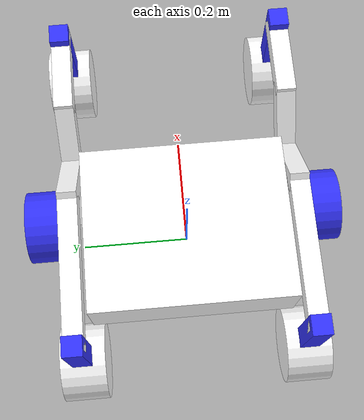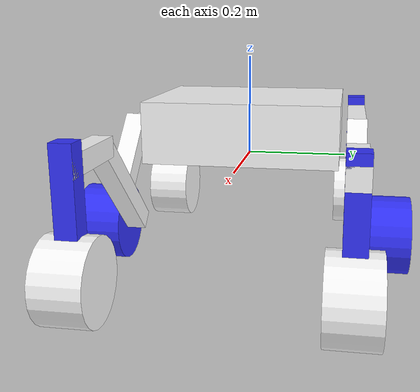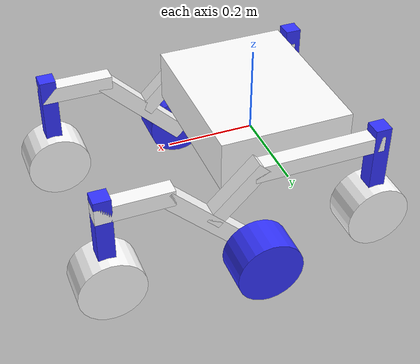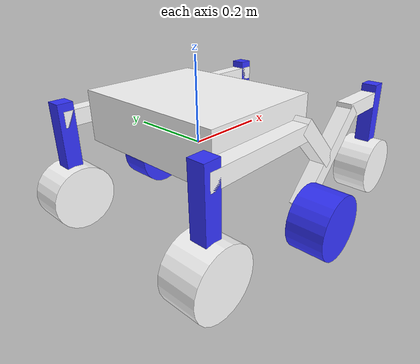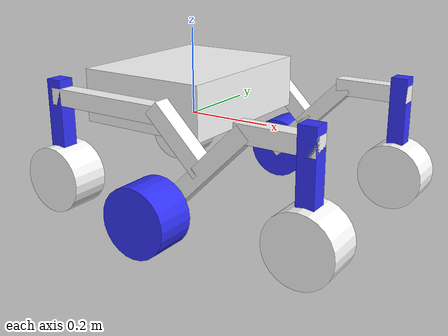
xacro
<?xml version="1.0"?>
<robot xmlns:xacro="http://www.ros.org/wiki/xacro"  name="robot">

    <!--FILES -->

    <xacro:include filename="inertial_macros.xacro"/>

    <!--COLORS -->

    <material name="gray">
        <color rgba="0 0 0 0.17"/>
    </material>

    <material name="black">
        <color rgba="0 0 0 0.1"/>
    </material>

    <material name="blue">
        <color rgba="0.2 0.2 1 1"/>
    </material>

    <material name="white">
        <color rgba="1 1 1 1"/>
    </material>

    <!--BASE LINK -->

    <link name="base_link">

    </link>

    <!--CHASSIS LINK -->

    <joint name="chassis_joint" type="fixed">
        <parent link="base_link"/>
        <child link="chassis"/>
        <origin xyz="0 0 0.060325"/>
    </joint>

    <link name="chassis">
        <visual>
            <geometry>
                <box size="0.3048 0.381 0.12065"/>
            </geometry>
            <material name="white"/>
        </visual>
        <collision>
            <geometry>
                <box size="0.3048 0.381 0.12065"/>
            </geometry>
        </collision>
        <xacro:inertial_box mass="1.3040781" x="0.3048" y="0.381" z="0.12065">
            <origin xyz="0 0 0" rpy="0 0 0"/>
        </xacro:inertial_box>
    </link>

    <gazebo reference="chassis">
        <material>Gazebo/White</material>
    </gazebo>

    <joint name="left_front_chassis_joint" type="fixed">
        <parent link="chassis"/>
        <child link="left_bar_chassis"/>
        <origin xyz="0.0762 0.22225 0"/>
    </joint>

    <link name="left_bar_chassis">
        <visual>
            <origin xyz="-0.13335 0 0"/>
            <geometry>
                <box size="0.3048 0.0381 0.0381"/>
            </geometry>
            <material name="white"/>
        </visual>
        <collision>
            <origin xyz="-0.13335 0 0"/>
            <geometry>
                <box size="0.3048 0.0381 0.0381"/>
            </geometry>
        </collision>
        <xacro:inertial_box mass="0.2857632" x="0.3048" y="0.0381" z="0.0381">
            <origin xyz="-0.13335 0 0" rpy="0 0 0"/>
        </xacro:inertial_box>
    </link>

    <gazebo reference="left_bar_chassis">
        <material>Gazebo/White</material>
    </gazebo>

    <joint name="right_front_chassis_joint" type="fixed">
        <parent link="chassis"/>
        <child link="right_bar_chassis"/>
        <origin xyz="0.0762 -0.22225 0"/>
    </joint>

    <link name="right_bar_chassis">
        <visual>
            <origin xyz="-0.13335 0 0"/>
            <geometry>
                <box size="0.3048 0.0381 0.0381"/>
            </geometry>
            <material name="white"/>
        </visual>
        <collision>
            <origin xyz="-0.13335 0 0"/>
            <geometry>
                <box size="0.3048 0.0381 0.0381"/>
            </geometry>
        </collision>
        <xacro:inertial_box mass="0.2857632" x="0.3048" y="0.0381" z="0.0381">
            <origin xyz="-0.13335 0 0" rpy="0 0 0"/>
        </xacro:inertial_box>
    </link>

    <gazebo reference="right_bar_chassis">
        <material>Gazebo/White</material>
    </gazebo>

    <!--BACK WHEELS -->

    <joint name="left_back_corner_motor_joint" type="continuous">
        <parent link="left_bar_chassis"/>
        <child link="left_back_corner_motor"/>
        <origin xyz="-0.2794 0 0" rpy="-${pi/2} 0 0"/>
        <axis xyz="0 1 0"/>
    </joint>

    <link name="left_back_corner_motor">
        <visual>
            <origin xyz="0 0.05715 0"/>
            <geometry>
                <box size="0.0381 0.1905 0.0381"/>
            </geometry>
            <material name="blue"/>
        </visual>
        <collision>
            <origin xyz="0 0.05715 0"/>
            <geometry>
                <box size="0.0381 0.1905 0.0381"/>
            </geometry>
        </collision>
        <xacro:inertial_box mass="0.816239471" x="0.0381" y="0.1905" z="0.0381">
            <origin xyz="0 0.05715 0" rpy="0 0 0"/>
        </xacro:inertial_box>
    </link>

    <gazebo reference="left_back_corner_motor">
        <material>Gazebo/Blue</material>
    </gazebo>

    <joint name="right_back_corner_motor_joint" type="continuous">
        <parent link="right_bar_chassis"/>
        <child link="right_back_corner_motor"/>
        <origin xyz="-0.2794 0 0" rpy="-${pi/2} 0 0"/>
        <axis xyz="0 1 0"/>
    </joint>

    <link name="right_back_corner_motor">
        <visual>
            <origin xyz="0 0.05715 0"/>
            <geometry>
                <box size="0.0381 0.1905 0.0381"/>
            </geometry>
            <material name="blue"/>
        </visual>
        <collision>
            <origin xyz="0 0.05715 0"/>
            <geometry>
                <box size="0.0381 0.1905 0.0381"/>
            </geometry>
        </collision>
        <xacro:inertial_box mass="0.816239471" x="0.0381" y="0.1905" z="0.0381">
            <origin xyz="0 0.05715 0" rpy="0 0 0"/>
        </xacro:inertial_box>
    </link>

    <gazebo reference="right_back_corner_motor">
        <material>Gazebo/Blue</material>
    </gazebo>

    <joint name="left_back_wheel_joint" type= "continuous">
        <parent link="left_back_corner_motor"/>
        <child link="left_back_wheel"/>
        <origin xyz="0 0.1905 0" rpy="0 0 -${pi/2}"/>
        <axis xyz="0 0 1"/>
    </joint>

    <link name="left_back_wheel">
        <visual>
            <geometry>
                <cylinder radius="0.0762" length="0.0889"/>
            </geometry>
            <material name="white"/>
        </visual>
        <collision>
            <geometry>
                <cylinder radius="0.0762" length="0.0889"/>
            </geometry>
        </collision>
        <xacro:inertial_cylinder mass="0.272155" length="0.0889" radius="0.0762">
            <origin xyz="0 0 0" rpy = "0 0 0"/>
        </xacro:inertial_cylinder>
    </link>

    <gazebo reference="left_back_wheel">
        <material>Gazebo/White</material>
    </gazebo>

    <joint name="right_back_wheel_joint" type= "continuous">
        <parent link="right_back_corner_motor"/>
        <child link="right_back_wheel"/>
        <origin xyz="0 0.1905 0" rpy="0 0 -${pi/2}"/>
        <axis xyz="0 0 1"/>
    </joint>

    <link name="right_back_wheel">
        <visual>
            <geometry>
                <cylinder radius="0.0762" length="0.0889"/>
            </geometry>
            <material name="white"/>
        </visual>
        <collision>
            <geometry>
                <cylinder radius="0.0762" length="0.0889"/>
            </geometry>
        </collision>
        <xacro:inertial_cylinder mass="0.272155" length="0.0889" radius="0.0762">
            <origin xyz="0 0 0" rpy = "0 0 0"/>
        </xacro:inertial_cylinder>
    </link>

    <gazebo reference="right_back_wheel">
        <material>Gazebo/White</material>
    </gazebo>

    <!--MIDDLE WHEELS -->

    <joint name="left_middle_diagonal_joint" type="fixed">
        <parent link="left_bar_chassis"/>
        <child link="left_middle_diagonal"/>
        <origin xyz="0.1143 0 -0.1016" rpy="0 -${pi/4} 0"/>
    </joint>

    <link name="left_middle_diagonal">
        <visual>
            <origin xyz="0 0 0.08255"/>
            <geometry>
                <box size="0.0381 0.0381 0.1651"/>
            </geometry>
            <material name="white"/>
        </visual>
        <collision>
            <origin xyz="0 0 0.08255"/>
            <geometry>
                <box size="0.0381 0.0381 0.1651"/>
            </geometry>
        </collision>
        <xacro:inertial_box mass="0.10296547" x="0.0381" y="0.0381" z="0.1651">
            <origin xyz="0 0 0.08255" rpy="0 0 0"/>
        </xacro:inertial_box>
    </link>

    <gazebo reference="left_middle_diagonal">
        <material>Gazebo/White</material>
    </gazebo>

    <joint name="right_middle_diagonal_joint" type="fixed">
        <parent link="right_bar_chassis"/>
        <child link="right_middle_diagonal"/>
        <origin xyz="0.1143 0 -0.1016" rpy="0 -${pi/4} 0"/>
    </joint>

    <link name="right_middle_diagonal">
        <visual>
            <origin xyz="0 0 0.08255"/>
            <geometry>
                <box size="0.0381 0.0381 0.1651"/>
            </geometry>
            <material name="white"/>
        </visual>
        <collision>
            <origin xyz="0 0 0.08255"/>
            <geometry>
                <box size="0.0381 0.0381 0.1651"/>
            </geometry>
        </collision>
        <xacro:inertial_box mass="0.10296547" x="0.0381" y="0.0381" z="0.1651">
            <origin xyz="0 0 0.08255" rpy="0 0 0"/>
        </xacro:inertial_box>
    </link>

    <gazebo reference="right_middle_diagonal">
        <material>Gazebo/White</material>
    </gazebo>

    <joint name="left_middle_balancer_joint" type="continuous">
        <parent link="left_middle_diagonal"/>
        <child link="left_middle_balancer"/>
        <origin xyz="0 0 0" rpy="0 ${pi} 0"/>
        <axis xyz="0 1 0"/>
    </joint>

    <link name="left_middle_balancer">
        <visual>
            <origin xyz="-0.00635 0 0"/>
            <geometry>
                <box size="0.27305 0.0381 0.0381"/>
            </geometry>
            <material name="white"/>
        </visual>
        <collision>
            <origin xyz="-0.00635 0 0"/>
            <geometry>
                <box size="0.27305 0.0381 0.0381"/>
            </geometry>
        </collision>
        <xacro:inertial_box mass="0.469818593774" x="0.27305" y="0.0381" z="0.0381">
            <origin xyz="-0.00635 0 0" rpy="0 0 0"/>
        </xacro:inertial_box>
    </link>

    <gazebo reference="left_middle_balancer">
        <material>Gazebo/White</material>
    </gazebo>

    <joint name="right_middle_balancer_joint" type="continuous">
        <parent link="right_middle_diagonal"/>
        <child link="right_middle_balancer"/>
        <origin xyz="0 0 0" rpy="0 ${pi} 0"/>
        <axis xyz="0 1 0"/>
    </joint>

    <link name="right_middle_balancer">
        <visual>
            <origin xyz="-0.00635 0 0"/>
            <geometry>
                <box size="0.27305 0.0381 0.0381"/>
            </geometry>
            <material name="white"/>
        </visual>
        <collision>
            <origin xyz="-0.00635 0 0"/>
            <geometry>
                <box size="0.27305 0.0381 0.0381"/>
            </geometry>
        </collision>
        <xacro:inertial_box mass="0.469818593774" x="0.27305" y="0.0381" z="0.0381">
            <origin xyz="-0.00635 0 0" rpy="0 0 0"/>
        </xacro:inertial_box>
    </link>

    <gazebo reference="right_middle_balancer">
        <material>Gazebo/White</material>
    </gazebo>

    <joint name="left_middle_wheel_joint" type= "continuous">
        <parent link="left_middle_balancer"/>
        <child link="left_middle_wheel"/>
        <origin xyz="0.1397 0.01905 0" rpy="-${pi/2} 0 0"/>
        <axis xyz="0 0 1"/>
    </joint>

    <link name="left_middle_wheel">
        <visual>
            <origin xyz="0 0 0.0445"/>
            <geometry>
                <cylinder radius="0.0762" length="0.0889"/>
            </geometry>
            <material name="blue"/>
        </visual>
        <collision>
            <origin xyz="0 0 0.0445"/>
            <geometry>
                <cylinder radius="0.0762" length="0.0889"/>
            </geometry>
        </collision>
        <xacro:inertial_cylinder mass="0.272155" length="0.0889" radius="0.0762">
            <origin xyz="0 0 0.0445" rpy = "0 0 0"/>
        </xacro:inertial_cylinder>
    </link>

    <gazebo reference="left_middle_wheel">
        <material>Gazebo/Blue</material>
    </gazebo>

    <joint name="right_middle_wheel_joint" type= "continuous">
        <parent link="right_middle_balancer"/>
        <child link="right_middle_wheel"/>
        <origin xyz="0.1397 -0.01905 0" rpy="-${pi/2} 0 0"/>
        <axis xyz="0 0 1"/>
    </joint>

    <link name="right_middle_wheel">
        <visual>
            <origin xyz="0 0 -0.0445"/>
            <geometry>
                <cylinder radius="0.0762" length="0.0889"/>
            </geometry>
            <material name="blue"/>
        </visual>
        <collision>
            <origin xyz="0 0 -0.0445"/>
            <geometry>
                <cylinder radius="0.0762" length="0.0889"/>
            </geometry>
        </collision>
        <xacro:inertial_cylinder mass="0.272155" length="0.0889" radius="0.0762">
            <origin xyz="0 0 0.0445" rpy = "0 0 0"/>
        </xacro:inertial_cylinder>
    </link>

    <gazebo reference="right_middle_wheel">
        <material>Gazebo/Blue</material>
    </gazebo>

    <!--FRONT WHEELS -->

    <joint name="left_front_bar_joint" type= "fixed">
        <parent link="left_middle_balancer"/>
        <child link="left_front_bar"/>
        <origin xyz="-0.1397 0 0" rpy="0 ${5*pi/4} 0"/>
    </joint>

    <link name="left_front_bar">
        <visual>
            <origin xyz="0.066675 0 0"/>
            <geometry>
                <box size="0.17145 0.0381 0.0381"/>
            </geometry>
            <material name="white"/>
        </visual>
        <collision>
            <origin xyz="0.066675 0 0"/>
            <geometry>
                <box size="0.17145 0.0381 0.0381"/>
            </geometry>
        </collision>
        <xacro:inertial_box mass="0.14424237" x="0.17145" y="0.0381" z="0.0381">
            <origin xyz="0.066675 0 0" rpy="0 0 0"/>
        </xacro:inertial_box>
    </link>

    <gazebo reference="left_front_bar">
        <material>Gazebo/White</material>
    </gazebo>

    <joint name="right_front_bar_joint" type= "fixed">
        <parent link="right_middle_balancer"/>
        <child link="right_front_bar"/>
        <origin xyz="-0.1397 0 0" rpy="0 ${5*pi/4} 0"/>
    </joint>

    <link name="right_front_bar">
        <visual>
            <origin xyz="0.066675 0 0"/>
            <geometry>
                <box size="0.17145 0.0381 0.0381"/>
            </geometry>
            <material name="white"/>
        </visual>
        <collision>
            <origin xyz="0.066675 0 0"/>
            <geometry>
                <box size="0.17145 0.0381 0.0381"/>
            </geometry>
        </collision>
        <xacro:inertial_box mass="0.14424237" x="0.17145" y="0.0381" z="0.0381">
            <origin xyz="0.066675 0 0" rpy="0 0 0"/>
        </xacro:inertial_box>
    </link>

    <gazebo reference="right_front_bar">
        <material>Gazebo/White</material>
    </gazebo>

    <joint name="left_front_corner_motor_joint" type="continuous">
        <parent link="left_front_bar"/>
        <child link="left_front_corner_motor"/>
        <origin xyz="0.13335 0 0" rpy="-${pi/2} 0 0"/>
        <axis xyz="0 1 0"/>
    </joint>

    <link name="left_front_corner_motor">
        <visual>
            <origin xyz="0 0.05715 0"/>
            <geometry>
                <box size="0.0381 0.1905 0.0381"/>
            </geometry>
            <material name="blue"/>
        </visual>
        <collision>
            <origin xyz="0 0.05715 0"/>
            <geometry>
                <box size="0.0381 0.1905 0.0381"/>
            </geometry>
        </collision>
        <xacro:inertial_box mass="0.816239471" x="0.0381" y="0.1905" z="0.0381">
            <origin xyz="0 0.05715 0" rpy="0 0 0"/>
        </xacro:inertial_box>
    </link>

    <gazebo reference="left_front_corner_motor">
        <material>Gazebo/Blue</material>
    </gazebo>

    <joint name="right_front_corner_motor_joint" type="continuous">
        <parent link="right_front_bar"/>
        <child link="right_front_corner_motor"/>
        <origin xyz="0.13335 0 0" rpy="-${pi/2} 0 0"/>
        <axis xyz="0 1 0"/>
    </joint>

    <link name="right_front_corner_motor">
        <visual>
            <origin xyz="0 0.05715 0"/>
            <geometry>
                <box size="0.0381 0.1905 0.0381"/>
            </geometry>
            <material name="blue"/>
        </visual>
        <collision>
            <origin xyz="0 0.05715 0"/>
            <geometry>
                <box size="0.0381 0.1905 0.0381"/>
            </geometry>
        </collision>
        <xacro:inertial_box mass="0.816239471" x="0.0381" y="0.1905" z="0.0381">
            <origin xyz="0 0.05715 0" rpy="0 0 0"/>
        </xacro:inertial_box>
    </link>

    <gazebo reference="right_front_corner_motor">
        <material>Gazebo/Blue</material>
    </gazebo>

    <joint name="left_front_wheel_joint" type= "continuous">
        <parent link="left_front_corner_motor"/>
        <child link="left_front_wheel"/>
        <origin xyz="0 0.1905 0" rpy="0 0 -${pi/2}"/>
        <axis xyz="0 0 1"/>
    </joint>

    <link name="left_front_wheel">
        <visual>
            <geometry>
                <cylinder radius="0.0762" length="0.0889"/>
            </geometry>
            <material name="white"/>
        </visual>
        <collision>
            <geometry>
                <cylinder radius="0.0762" length="0.0889"/>
            </geometry>
        </collision>
        <xacro:inertial_cylinder mass="0.272155" length="0.0889" radius="0.0762">
            <origin xyz="0 0 0" rpy = "0 0 0"/>
        </xacro:inertial_cylinder>
    </link>

    <gazebo reference="left_front_wheel">
        <material>Gazebo/White</material>
    </gazebo>

    <joint name="right_front_wheel_joint" type= "continuous">
        <parent link="right_front_corner_motor"/>
        <child link="right_front_wheel"/>
        <origin xyz="0 0.1905 0" rpy="0 0 -${pi/2}"/>
        <axis xyz="0 0 1"/>
    </joint>

    <link name="right_front_wheel">
        <visual>
            <geometry>
                <cylinder radius="0.0762" length="0.0889"/>
            </geometry>
            <material name="white"/>
        </visual>
        <collision>
            <geometry>
                <cylinder radius="0.0762" length="0.0889"/>
            </geometry>
        </collision>
        <xacro:inertial_cylinder mass="0.272155" length="0.0889" radius="0.0762">
            <origin xyz="0 0 0" rpy = "0 0 0"/>
        </xacro:inertial_cylinder>
    </link>

    <gazebo reference="right_front_wheel">
        <material>Gazebo/White</material>
    </gazebo>

</robot>
